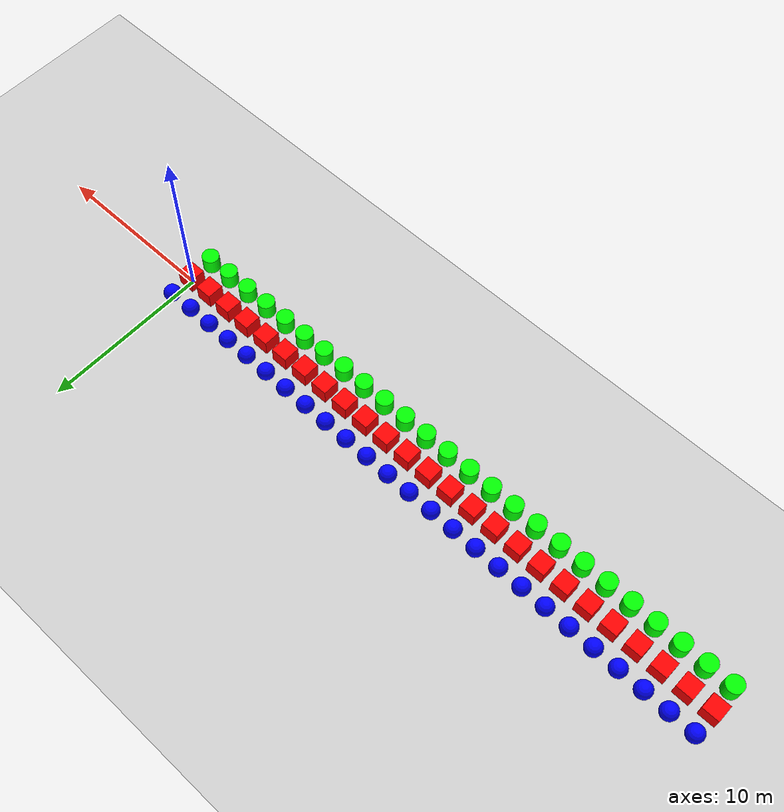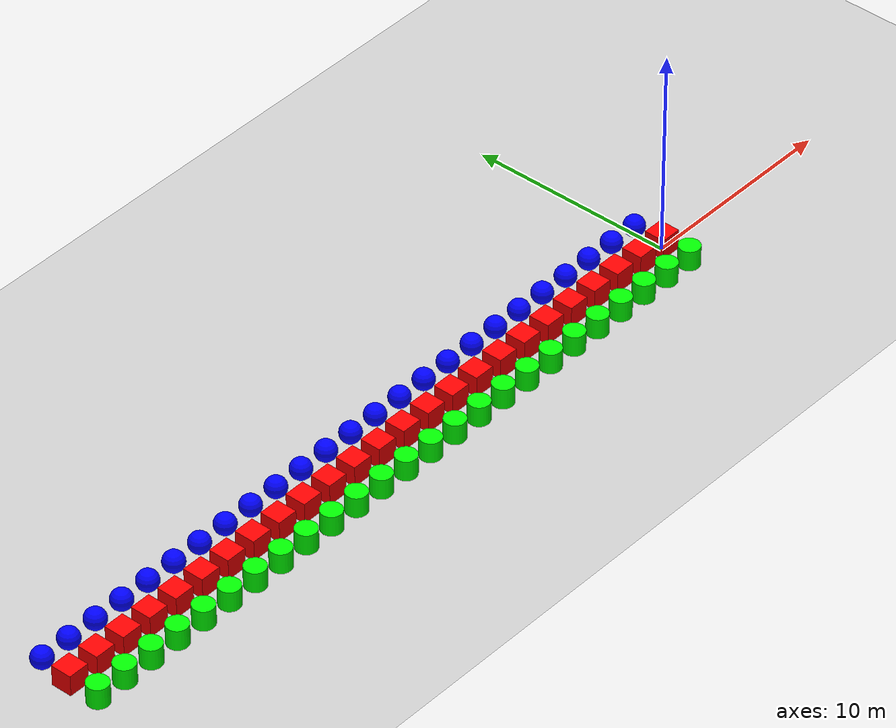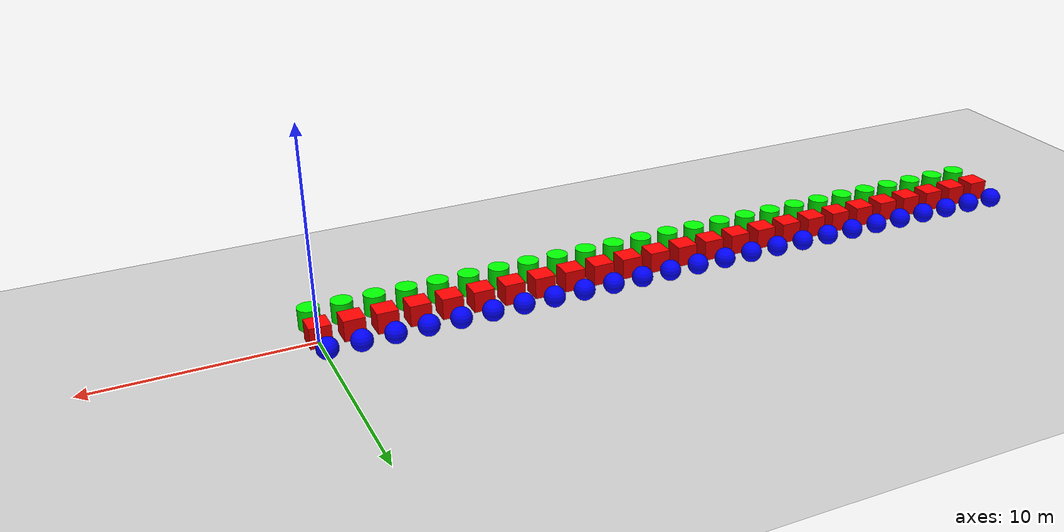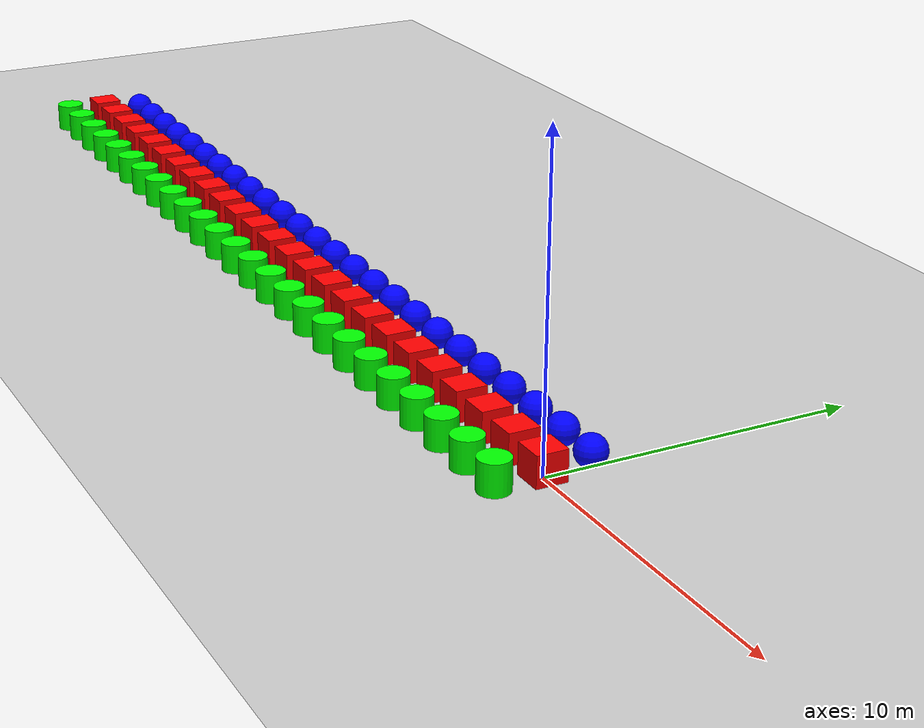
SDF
<sdf version="1.6">
 <world name="shapes">
  <model name="ground_plane">
   <static>true</static>
   <link name="link">
    <collision name="collision">
     <geometry><plane><normal>0 0 1</normal><size>100 100</size></plane></geometry>
    </collision>
    <visual name="visual">
     <geometry><plane><normal>0 0 1</normal><size>100 100</size></plane></geometry>
     <material>
      <ambient>0.8 0.8 0.8 1</ambient>
      <diffuse>0.8 0.8 0.8 1</diffuse>
      <specular>0.8 0.8 0.8 1</specular>
     </material>
    </visual>
   </link>
  </model>
  <model name="box_476">
   <static>false</static>
   <pose>-36.0 0 0.5 0 0 0</pose>
   <link name="box_link">
    <inertial>
     <inertia><ixx>1</ixx><ixy>0</ixy><ixz>0</ixz><iyy>1</iyy><iyz>0</iyz><izz>1</izz></inertia>
     <mass>1.0</mass>
    </inertial>
    <collision name="box_collision"><geometry><box><size>1 1 1</size></box></geometry></collision>
    <visual name="box_visual">
     <geometry><box><size>1 1 1</size></box></geometry>
     <material><ambient>1 0 0 1</ambient><diffuse>1 0 0 1</diffuse><specular>1 0 0 1</specular></material>
    </visual>
   </link>
  </model>
  <model name="cylinder_476">
   <static>false</static>
   <pose>-36.0 -1.5 0.5 0 0 0</pose>
   <link name="cylinder_link">
    <inertial>
     <inertia><ixx>2</ixx><ixy>0</ixy><ixz>0</ixz><iyy>2</iyy><iyz>0</iyz><izz>2</izz></inertia>
     <mass>2.0</mass>
    </inertial>
    <collision name="cylinder_collision">
     <geometry><cylinder><radius>0.5</radius><length>1.0</length></cylinder></geometry>
    </collision>
    <visual name="cylinder_visual">
     <geometry><cylinder><radius>0.5</radius><length>1.0</length></cylinder></geometry>
     <material><ambient>0 1 0 1</ambient><diffuse>0 1 0 1</diffuse><specular>0 1 0 1</specular></material>
    </visual>
   </link>
  </model>
  <model name="sphere_476">
   <static>false</static>
   <pose>-36.0 1.5 0.5 0 0 0</pose>
   <link name="sphere_link">
    <inertial>
     <inertia><ixx>3</ixx><ixy>0</ixy><ixz>0</ixz><iyy>3</iyy><iyz>0</iyz><izz>3</izz></inertia>
     <mass>3.0</mass>
    </inertial>
    <collision name="sphere_collision"><geometry><sphere><radius>0.5</radius></sphere></geometry></collision>
    <visual name="sphere_visual">
     <geometry><sphere><radius>0.5</radius></sphere></geometry>
     <material><ambient>0 0 1 1</ambient><diffuse>0 0 1 1</diffuse><specular>0 0 1 1</specular></material>
    </visual>
   </link>
  </model>
  <model name="box_477">
   <static>false</static>
   <pose>-34.5 0 0.5 0 0 0</pose>
   <link name="box_link">
    <inertial>
     <inertia><ixx>1</ixx><ixy>0</ixy><ixz>0</ixz><iyy>1</iyy><iyz>0</iyz><izz>1</izz></inertia>
     <mass>1.0</mass>
    </inertial>
    <collision name="box_collision"><geometry><box><size>1 1 1</size></box></geometry></collision>
    <visual name="box_visual">
     <geometry><box><size>1 1 1</size></box></geometry>
     <material><ambient>1 0 0 1</ambient><diffuse>1 0 0 1</diffuse><specular>1 0 0 1</specular></material>
    </visual>
   </link>
  </model>
  <model name="cylinder_477">
   <static>false</static>
   <pose>-34.5 -1.5 0.5 0 0 0</pose>
   <link name="cylinder_link">
    <inertial>
     <inertia><ixx>2</ixx><ixy>0</ixy><ixz>0</ixz><iyy>2</iyy><iyz>0</iyz><izz>2</izz></inertia>
     <mass>2.0</mass>
    </inertial>
    <collision name="cylinder_collision">
     <geometry><cylinder><radius>0.5</radius><length>1.0</length></cylinder></geometry>
    </collision>
    <visual name="cylinder_visual">
     <geometry><cylinder><radius>0.5</radius><length>1.0</length></cylinder></geometry>
     <material><ambient>0 1 0 1</ambient><diffuse>0 1 0 1</diffuse><specular>0 1 0 1</specular></material>
    </visual>
   </link>
  </model>
  <model name="sphere_477">
   <static>false</static>
   <pose>-34.5 1.5 0.5 0 0 0</pose>
   <link name="sphere_link">
    <inertial>
     <inertia><ixx>3</ixx><ixy>0</ixy><ixz>0</ixz><iyy>3</iyy><iyz>0</iyz><izz>3</izz></inertia>
     <mass>3.0</mass>
    </inertial>
    <collision name="sphere_collision"><geometry><sphere><radius>0.5</radius></sphere></geometry></collision>
    <visual name="sphere_visual">
     <geometry><sphere><radius>0.5</radius></sphere></geometry>
     <material><ambient>0 0 1 1</ambient><diffuse>0 0 1 1</diffuse><specular>0 0 1 1</specular></material>
    </visual>
   </link>
  </model>
  <model name="box_478">
   <static>false</static>
   <pose>-33.0 0 0.5 0 0 0</pose>
   <link name="box_link">
    <inertial>
     <inertia><ixx>1</ixx><ixy>0</ixy><ixz>0</ixz><iyy>1</iyy><iyz>0</iyz><izz>1</izz></inertia>
     <mass>1.0</mass>
    </inertial>
    <collision name="box_collision"><geometry><box><size>1 1 1</size></box></geometry></collision>
    <visual name="box_visual">
     <geometry><box><size>1 1 1</size></box></geometry>
     <material><ambient>1 0 0 1</ambient><diffuse>1 0 0 1</diffuse><specular>1 0 0 1</specular></material>
    </visual>
   </link>
  </model>
  <model name="cylinder_478">
   <static>false</static>
   <pose>-33.0 -1.5 0.5 0 0 0</pose>
   <link name="cylinder_link">
    <inertial>
     <inertia><ixx>2</ixx><ixy>0</ixy><ixz>0</ixz><iyy>2</iyy><iyz>0</iyz><izz>2</izz></inertia>
     <mass>2.0</mass>
    </inertial>
    <collision name="cylinder_collision">
     <geometry><cylinder><radius>0.5</radius><length>1.0</length></cylinder></geometry>
    </collision>
    <visual name="cylinder_visual">
     <geometry><cylinder><radius>0.5</radius><length>1.0</length></cylinder></geometry>
     <material><ambient>0 1 0 1</ambient><diffuse>0 1 0 1</diffuse><specular>0 1 0 1</specular></material>
    </visual>
   </link>
  </model>
  <model name="sphere_478">
   <static>false</static>
   <pose>-33.0 1.5 0.5 0 0 0</pose>
   <link name="sphere_link">
    <inertial>
     <inertia><ixx>3</ixx><ixy>0</ixy><ixz>0</ixz><iyy>3</iyy><iyz>0</iyz><izz>3</izz></inertia>
     <mass>3.0</mass>
    </inertial>
    <collision name="sphere_collision"><geometry><sphere><radius>0.5</radius></sphere></geometry></collision>
    <visual name="sphere_visual">
     <geometry><sphere><radius>0.5</radius></sphere></geometry>
     <material><ambient>0 0 1 1</ambient><diffuse>0 0 1 1</diffuse><specular>0 0 1 1</specular></material>
    </visual>
   </link>
  </model>
  <model name="box_479">
   <static>false</static>
   <pose>-31.5 0 0.5 0 0 0</pose>
   <link name="box_link">
    <inertial>
     <inertia><ixx>1</ixx><ixy>0</ixy><ixz>0</ixz><iyy>1</iyy><iyz>0</iyz><izz>1</izz></inertia>
     <mass>1.0</mass>
    </inertial>
    <collision name="box_collision"><geometry><box><size>1 1 1</size></box></geometry></collision>
    <visual name="box_visual">
     <geometry><box><size>1 1 1</size></box></geometry>
     <material><ambient>1 0 0 1</ambient><diffuse>1 0 0 1</diffuse><specular>1 0 0 1</specular></material>
    </visual>
   </link>
  </model>
  <model name="cylinder_479">
   <static>false</static>
   <pose>-31.5 -1.5 0.5 0 0 0</pose>
   <link name="cylinder_link">
    <inertial>
     <inertia><ixx>2</ixx><ixy>0</ixy><ixz>0</ixz><iyy>2</iyy><iyz>0</iyz><izz>2</izz></inertia>
     <mass>2.0</mass>
    </inertial>
    <collision name="cylinder_collision">
     <geometry><cylinder><radius>0.5</radius><length>1.0</length></cylinder></geometry>
    </collision>
    <visual name="cylinder_visual">
     <geometry><cylinder><radius>0.5</radius><length>1.0</length></cylinder></geometry>
     <material><ambient>0 1 0 1</ambient><diffuse>0 1 0 1</diffuse><specular>0 1 0 1</specular></material>
    </visual>
   </link>
  </model>
  <model name="sphere_479">
   <static>false</static>
   <pose>-31.5 1.5 0.5 0 0 0</pose>
   <link name="sphere_link">
    <inertial>
     <inertia><ixx>3</ixx><ixy>0</ixy><ixz>0</ixz><iyy>3</iyy><iyz>0</iyz><izz>3</izz></inertia>
     <mass>3.0</mass>
    </inertial>
    <collision name="sphere_collision"><geometry><sphere><radius>0.5</radius></sphere></geometry></collision>
    <visual name="sphere_visual">
     <geometry><sphere><radius>0.5</radius></sphere></geometry>
     <material><ambient>0 0 1 1</ambient><diffuse>0 0 1 1</diffuse><specular>0 0 1 1</specular></material>
    </visual>
   </link>
  </model>
  <model name="box_480">
   <static>false</static>
   <pose>-30.0 0 0.5 0 0 0</pose>
   <link name="box_link">
    <inertial>
     <inertia><ixx>1</ixx><ixy>0</ixy><ixz>0</ixz><iyy>1</iyy><iyz>0</iyz><izz>1</izz></inertia>
     <mass>1.0</mass>
    </inertial>
    <collision name="box_collision"><geometry><box><size>1 1 1</size></box></geometry></collision>
    <visual name="box_visual">
     <geometry><box><size>1 1 1</size></box></geometry>
     <material><ambient>1 0 0 1</ambient><diffuse>1 0 0 1</diffuse><specular>1 0 0 1</specular></material>
    </visual>
   </link>
  </model>
  <model name="cylinder_480">
   <static>false</static>
   <pose>-30.0 -1.5 0.5 0 0 0</pose>
   <link name="cylinder_link">
    <inertial>
     <inertia><ixx>2</ixx><ixy>0</ixy><ixz>0</ixz><iyy>2</iyy><iyz>0</iyz><izz>2</izz></inertia>
     <mass>2.0</mass>
    </inertial>
    <collision name="cylinder_collision">
     <geometry><cylinder><radius>0.5</radius><length>1.0</length></cylinder></geometry>
    </collision>
    <visual name="cylinder_visual">
     <geometry><cylinder><radius>0.5</radius><length>1.0</length></cylinder></geometry>
     <material><ambient>0 1 0 1</ambient><diffuse>0 1 0 1</diffuse><specular>0 1 0 1</specular></material>
    </visual>
   </link>
  </model>
  <model name="sphere_480">
   <static>false</static>
   <pose>-30.0 1.5 0.5 0 0 0</pose>
   <link name="sphere_link">
    <inertial>
     <inertia><ixx>3</ixx><ixy>0</ixy><ixz>0</ixz><iyy>3</iyy><iyz>0</iyz><izz>3</izz></inertia>
     <mass>3.0</mass>
    </inertial>
    <collision name="sphere_collision"><geometry><sphere><radius>0.5</radius></sphere></geometry></collision>
    <visual name="sphere_visual">
     <geometry><sphere><radius>0.5</radius></sphere></geometry>
     <material><ambient>0 0 1 1</ambient><diffuse>0 0 1 1</diffuse><specular>0 0 1 1</specular></material>
    </visual>
   </link>
  </model>
  <model name="box_481">
   <static>false</static>
   <pose>-28.5 0 0.5 0 0 0</pose>
   <link name="box_link">
    <inertial>
     <inertia><ixx>1</ixx><ixy>0</ixy><ixz>0</ixz><iyy>1</iyy><iyz>0</iyz><izz>1</izz></inertia>
     <mass>1.0</mass>
    </inertial>
    <collision name="box_collision"><geometry><box><size>1 1 1</size></box></geometry></collision>
    <visual name="box_visual">
     <geometry><box><size>1 1 1</size></box></geometry>
     <material><ambient>1 0 0 1</ambient><diffuse>1 0 0 1</diffuse><specular>1 0 0 1</specular></material>
    </visual>
   </link>
  </model>
  <model name="cylinder_481">
   <static>false</static>
   <pose>-28.5 -1.5 0.5 0 0 0</pose>
   <link name="cylinder_link">
    <inertial>
     <inertia><ixx>2</ixx><ixy>0</ixy><ixz>0</ixz><iyy>2</iyy><iyz>0</iyz><izz>2</izz></inertia>
     <mass>2.0</mass>
    </inertial>
    <collision name="cylinder_collision">
     <geometry><cylinder><radius>0.5</radius><length>1.0</length></cylinder></geometry>
    </collision>
    <visual name="cylinder_visual">
     <geometry><cylinder><radius>0.5</radius><length>1.0</length></cylinder></geometry>
     <material><ambient>0 1 0 1</ambient><diffuse>0 1 0 1</diffuse><specular>0 1 0 1</specular></material>
    </visual>
   </link>
  </model>
  <model name="sphere_481">
   <static>false</static>
   <pose>-28.5 1.5 0.5 0 0 0</pose>
   <link name="sphere_link">
    <inertial>
     <inertia><ixx>3</ixx><ixy>0</ixy><ixz>0</ixz><iyy>3</iyy><iyz>0</iyz><izz>3</izz></inertia>
     <mass>3.0</mass>
    </inertial>
    <collision name="sphere_collision"><geometry><sphere><radius>0.5</radius></sphere></geometry></collision>
    <visual name="sphere_visual">
     <geometry><sphere><radius>0.5</radius></sphere></geometry>
     <material><ambient>0 0 1 1</ambient><diffuse>0 0 1 1</diffuse><specular>0 0 1 1</specular></material>
    </visual>
   </link>
  </model>
  <model name="box_482">
   <static>false</static>
   <pose>-27.0 0 0.5 0 0 0</pose>
   <link name="box_link">
    <inertial>
     <inertia><ixx>1</ixx><ixy>0</ixy><ixz>0</ixz><iyy>1</iyy><iyz>0</iyz><izz>1</izz></inertia>
     <mass>1.0</mass>
    </inertial>
    <collision name="box_collision"><geometry><box><size>1 1 1</size></box></geometry></collision>
    <visual name="box_visual">
     <geometry><box><size>1 1 1</size></box></geometry>
     <material><ambient>1 0 0 1</ambient><diffuse>1 0 0 1</diffuse><specular>1 0 0 1</specular></material>
    </visual>
   </link>
  </model>
  <model name="cylinder_482">
   <static>false</static>
   <pose>-27.0 -1.5 0.5 0 0 0</pose>
   <link name="cylinder_link">
    <inertial>
     <inertia><ixx>2</ixx><ixy>0</ixy><ixz>0</ixz><iyy>2</iyy><iyz>0</iyz><izz>2</izz></inertia>
     <mass>2.0</mass>
    </inertial>
    <collision name="cylinder_collision">
     <geometry><cylinder><radius>0.5</radius><length>1.0</length></cylinder></geometry>
    </collision>
    <visual name="cylinder_visual">
     <geometry><cylinder><radius>0.5</radius><length>1.0</length></cylinder></geometry>
     <material><ambient>0 1 0 1</ambient><diffuse>0 1 0 1</diffuse><specular>0 1 0 1</specular></material>
    </visual>
   </link>
  </model>
  <model name="sphere_482">
   <static>false</static>
   <pose>-27.0 1.5 0.5 0 0 0</pose>
   <link name="sphere_link">
    <inertial>
     <inertia><ixx>3</ixx><ixy>0</ixy><ixz>0</ixz><iyy>3</iyy><iyz>0</iyz><izz>3</izz></inertia>
     <mass>3.0</mass>
    </inertial>
    <collision name="sphere_collision"><geometry><sphere><radius>0.5</radius></sphere></geometry></collision>
    <visual name="sphere_visual">
     <geometry><sphere><radius>0.5</radius></sphere></geometry>
     <material><ambient>0 0 1 1</ambient><diffuse>0 0 1 1</diffuse><specular>0 0 1 1</specular></material>
    </visual>
   </link>
  </model>
  <model name="box_483">
   <static>false</static>
   <pose>-25.5 0 0.5 0 0 0</pose>
   <link name="box_link">
    <inertial>
     <inertia><ixx>1</ixx><ixy>0</ixy><ixz>0</ixz><iyy>1</iyy><iyz>0</iyz><izz>1</izz></inertia>
     <mass>1.0</mass>
    </inertial>
    <collision name="box_collision"><geometry><box><size>1 1 1</size></box></geometry></collision>
    <visual name="box_visual">
     <geometry><box><size>1 1 1</size></box></geometry>
     <material><ambient>1 0 0 1</ambient><diffuse>1 0 0 1</diffuse><specular>1 0 0 1</specular></material>
    </visual>
   </link>
  </model>
  <model name="cylinder_483">
   <static>false</static>
   <pose>-25.5 -1.5 0.5 0 0 0</pose>
   <link name="cylinder_link">
    <inertial>
     <inertia><ixx>2</ixx><ixy>0</ixy><ixz>0</ixz><iyy>2</iyy><iyz>0</iyz><izz>2</izz></inertia>
     <mass>2.0</mass>
    </inertial>
    <collision name="cylinder_collision">
     <geometry><cylinder><radius>0.5</radius><length>1.0</length></cylinder></geometry>
    </collision>
    <visual name="cylinder_visual">
     <geometry><cylinder><radius>0.5</radius><length>1.0</length></cylinder></geometry>
     <material><ambient>0 1 0 1</ambient><diffuse>0 1 0 1</diffuse><specular>0 1 0 1</specular></material>
    </visual>
   </link>
  </model>
  <model name="sphere_483">
   <static>false</static>
   <pose>-25.5 1.5 0.5 0 0 0</pose>
   <link name="sphere_link">
    <inertial>
     <inertia><ixx>3</ixx><ixy>0</ixy><ixz>0</ixz><iyy>3</iyy><iyz>0</iyz><izz>3</izz></inertia>
     <mass>3.0</mass>
    </inertial>
    <collision name="sphere_collision"><geometry><sphere><radius>0.5</radius></sphere></geometry></collision>
    <visual name="sphere_visual">
     <geometry><sphere><radius>0.5</radius></sphere></geometry>
     <material><ambient>0 0 1 1</ambient><diffuse>0 0 1 1</diffuse><specular>0 0 1 1</specular></material>
    </visual>
   </link>
  </model>
  <model name="box_484">
   <static>false</static>
   <pose>-24.0 0 0.5 0 0 0</pose>
   <link name="box_link">
    <inertial>
     <inertia><ixx>1</ixx><ixy>0</ixy><ixz>0</ixz><iyy>1</iyy><iyz>0</iyz><izz>1</izz></inertia>
     <mass>1.0</mass>
    </inertial>
    <collision name="box_collision"><geometry><box><size>1 1 1</size></box></geometry></collision>
    <visual name="box_visual">
     <geometry><box><size>1 1 1</size></box></geometry>
     <material><ambient>1 0 0 1</ambient><diffuse>1 0 0 1</diffuse><specular>1 0 0 1</specular></material>
    </visual>
   </link>
  </model>
  <model name="cylinder_484">
   <static>false</static>
   <pose>-24.0 -1.5 0.5 0 0 0</pose>
   <link name="cylinder_link">
    <inertial>
     <inertia><ixx>2</ixx><ixy>0</ixy><ixz>0</ixz><iyy>2</iyy><iyz>0</iyz><izz>2</izz></inertia>
     <mass>2.0</mass>
    </inertial>
    <collision name="cylinder_collision">
     <geometry><cylinder><radius>0.5</radius><length>1.0</length></cylinder></geometry>
    </collision>
    <visual name="cylinder_visual">
     <geometry><cylinder><radius>0.5</radius><length>1.0</length></cylinder></geometry>
     <material><ambient>0 1 0 1</ambient><diffuse>0 1 0 1</diffuse><specular>0 1 0 1</specular></material>
    </visual>
   </link>
  </model>
  <model name="sphere_484">
   <static>false</static>
   <pose>-24.0 1.5 0.5 0 0 0</pose>
   <link name="sphere_link">
    <inertial>
     <inertia><ixx>3</ixx><ixy>0</ixy><ixz>0</ixz><iyy>3</iyy><iyz>0</iyz><izz>3</izz></inertia>
     <mass>3.0</mass>
    </inertial>
    <collision name="sphere_collision"><geometry><sphere><radius>0.5</radius></sphere></geometry></collision>
    <visual name="sphere_visual">
     <geometry><sphere><radius>0.5</radius></sphere></geometry>
     <material><ambient>0 0 1 1</ambient><diffuse>0 0 1 1</diffuse><specular>0 0 1 1</specular></material>
    </visual>
   </link>
  </model>
  <model name="box_485">
   <static>false</static>
   <pose>-22.5 0 0.5 0 0 0</pose>
   <link name="box_link">
    <inertial>
     <inertia><ixx>1</ixx><ixy>0</ixy><ixz>0</ixz><iyy>1</iyy><iyz>0</iyz><izz>1</izz></inertia>
     <mass>1.0</mass>
    </inertial>
    <collision name="box_collision"><geometry><box><size>1 1 1</size></box></geometry></collision>
    <visual name="box_visual">
     <geometry><box><size>1 1 1</size></box></geometry>
     <material><ambient>1 0 0 1</ambient><diffuse>1 0 0 1</diffuse><specular>1 0 0 1</specular></material>
    </visual>
   </link>
  </model>
  <model name="cylinder_485">
   <static>false</static>
   <pose>-22.5 -1.5 0.5 0 0 0</pose>
   <link name="cylinder_link">
    <inertial>
     <inertia><ixx>2</ixx><ixy>0</ixy><ixz>0</ixz><iyy>2</iyy><iyz>0</iyz><izz>2</izz></inertia>
     <mass>2.0</mass>
    </inertial>
    <collision name="cylinder_collision">
     <geometry><cylinder><radius>0.5</radius><length>1.0</length></cylinder></geometry>
    </collision>
    <visual name="cylinder_visual">
     <geometry><cylinder><radius>0.5</radius><length>1.0</length></cylinder></geometry>
     <material><ambient>0 1 0 1</ambient><diffuse>0 1 0 1</diffuse><specular>0 1 0 1</specular></material>
    </visual>
   </link>
  </model>
  <model name="sphere_485">
   <static>false</static>
   <pose>-22.5 1.5 0.5 0 0 0</pose>
   <link name="sphere_link">
    <inertial>
     <inertia><ixx>3</ixx><ixy>0</ixy><ixz>0</ixz><iyy>3</iyy><iyz>0</iyz><izz>3</izz></inertia>
     <mass>3.0</mass>
    </inertial>
    <collision name="sphere_collision"><geometry><sphere><radius>0.5</radius></sphere></geometry></collision>
    <visual name="sphere_visual">
     <geometry><sphere><radius>0.5</radius></sphere></geometry>
     <material><ambient>0 0 1 1</ambient><diffuse>0 0 1 1</diffuse><specular>0 0 1 1</specular></material>
    </visual>
   </link>
  </model>
  <model name="box_486">
   <static>false</static>
   <pose>-21.0 0 0.5 0 0 0</pose>
   <link name="box_link">
    <inertial>
     <inertia><ixx>1</ixx><ixy>0</ixy><ixz>0</ixz><iyy>1</iyy><iyz>0</iyz><izz>1</izz></inertia>
     <mass>1.0</mass>
    </inertial>
    <collision name="box_collision"><geometry><box><size>1 1 1</size></box></geometry></collision>
    <visual name="box_visual">
     <geometry><box><size>1 1 1</size></box></geometry>
     <material><ambient>1 0 0 1</ambient><diffuse>1 0 0 1</diffuse><specular>1 0 0 1</specular></material>
    </visual>
   </link>
  </model>
  <model name="cylinder_486">
   <static>false</static>
   <pose>-21.0 -1.5 0.5 0 0 0</pose>
   <link name="cylinder_link">
    <inertial>
     <inertia><ixx>2</ixx><ixy>0</ixy><ixz>0</ixz><iyy>2</iyy><iyz>0</iyz><izz>2</izz></inertia>
     <mass>2.0</mass>
    </inertial>
    <collision name="cylinder_collision">
     <geometry><cylinder><radius>0.5</radius><length>1.0</length></cylinder></geometry>
    </collision>
    <visual name="cylinder_visual">
     <geometry><cylinder><radius>0.5</radius><length>1.0</length></cylinder></geometry>
     <material><ambient>0 1 0 1</ambient><diffuse>0 1 0 1</diffuse><specular>0 1 0 1</specular></material>
    </visual>
   </link>
  </model>
  <model name="sphere_486">
   <static>false</static>
   <pose>-21.0 1.5 0.5 0 0 0</pose>
   <link name="sphere_link">
    <inertial>
     <inertia><ixx>3</ixx><ixy>0</ixy><ixz>0</ixz><iyy>3</iyy><iyz>0</iyz><izz>3</izz></inertia>
     <mass>3.0</mass>
    </inertial>
    <collision name="sphere_collision"><geometry><sphere><radius>0.5</radius></sphere></geometry></collision>
    <visual name="sphere_visual">
     <geometry><sphere><radius>0.5</radius></sphere></geometry>
     <material><ambient>0 0 1 1</ambient><diffuse>0 0 1 1</diffuse><specular>0 0 1 1</specular></material>
    </visual>
   </link>
  </model>
  <model name="box_487">
   <static>false</static>
   <pose>-19.5 0 0.5 0 0 0</pose>
   <link name="box_link">
    <inertial>
     <inertia><ixx>1</ixx><ixy>0</ixy><ixz>0</ixz><iyy>1</iyy><iyz>0</iyz><izz>1</izz></inertia>
     <mass>1.0</mass>
    </inertial>
    <collision name="box_collision"><geometry><box><size>1 1 1</size></box></geometry></collision>
    <visual name="box_visual">
     <geometry><box><size>1 1 1</size></box></geometry>
     <material><ambient>1 0 0 1</ambient><diffuse>1 0 0 1</diffuse><specular>1 0 0 1</specular></material>
    </visual>
   </link>
  </model>
  <model name="cylinder_487">
   <static>false</static>
   <pose>-19.5 -1.5 0.5 0 0 0</pose>
   <link name="cylinder_link">
    <inertial>
     <inertia><ixx>2</ixx><ixy>0</ixy><ixz>0</ixz><iyy>2</iyy><iyz>0</iyz><izz>2</izz></inertia>
     <mass>2.0</mass>
    </inertial>
    <collision name="cylinder_collision">
     <geometry><cylinder><radius>0.5</radius><length>1.0</length></cylinder></geometry>
    </collision>
    <visual name="cylinder_visual">
     <geometry><cylinder><radius>0.5</radius><length>1.0</length></cylinder></geometry>
     <material><ambient>0 1 0 1</ambient><diffuse>0 1 0 1</diffuse><specular>0 1 0 1</specular></material>
    </visual>
   </link>
  </model>
  <model name="sphere_487">
   <static>false</static>
   <pose>-19.5 1.5 0.5 0 0 0</pose>
   <link name="sphere_link">
    <inertial>
     <inertia><ixx>3</ixx><ixy>0</ixy><ixz>0</ixz><iyy>3</iyy><iyz>0</iyz><izz>3</izz></inertia>
     <mass>3.0</mass>
    </inertial>
    <collision name="sphere_collision"><geometry><sphere><radius>0.5</radius></sphere></geometry></collision>
    <visual name="sphere_visual">
     <geometry><sphere><radius>0.5</radius></sphere></geometry>
     <material><ambient>0 0 1 1</ambient><diffuse>0 0 1 1</diffuse><specular>0 0 1 1</specular></material>
    </visual>
   </link>
  </model>
  <model name="box_488">
   <static>false</static>
   <pose>-18.0 0 0.5 0 0 0</pose>
   <link name="box_link">
    <inertial>
     <inertia><ixx>1</ixx><ixy>0</ixy><ixz>0</ixz><iyy>1</iyy><iyz>0</iyz><izz>1</izz></inertia>
     <mass>1.0</mass>
    </inertial>
    <collision name="box_collision"><geometry><box><size>1 1 1</size></box></geometry></collision>
    <visual name="box_visual">
     <geometry><box><size>1 1 1</size></box></geometry>
     <material><ambient>1 0 0 1</ambient><diffuse>1 0 0 1</diffuse><specular>1 0 0 1</specular></material>
    </visual>
   </link>
  </model>
  <model name="cylinder_488">
   <static>false</static>
   <pose>-18.0 -1.5 0.5 0 0 0</pose>
   <link name="cylinder_link">
    <inertial>
     <inertia><ixx>2</ixx><ixy>0</ixy><ixz>0</ixz><iyy>2</iyy><iyz>0</iyz><izz>2</izz></inertia>
     <mass>2.0</mass>
    </inertial>
    <collision name="cylinder_collision">
     <geometry><cylinder><radius>0.5</radius><length>1.0</length></cylinder></geometry>
    </collision>
    <visual name="cylinder_visual">
     <geometry><cylinder><radius>0.5</radius><length>1.0</length></cylinder></geometry>
     <material><ambient>0 1 0 1</ambient><diffuse>0 1 0 1</diffuse><specular>0 1 0 1</specular></material>
    </visual>
   </link>
  </model>
  <model name="sphere_488">
   <static>false</static>
   <pose>-18.0 1.5 0.5 0 0 0</pose>
   <link name="sphere_link">
    <inertial>
     <inertia><ixx>3</ixx><ixy>0</ixy><ixz>0</ixz><iyy>3</iyy><iyz>0</iyz><izz>3</izz></inertia>
     <mass>3.0</mass>
    </inertial>
    <collision name="sphere_collision"><geometry><sphere><radius>0.5</radius></sphere></geometry></collision>
    <visual name="sphere_visual">
     <geometry><sphere><radius>0.5</radius></sphere></geometry>
     <material><ambient>0 0 1 1</ambient><diffuse>0 0 1 1</diffuse><specular>0 0 1 1</specular></material>
    </visual>
   </link>
  </model>
  <model name="box_489">
   <static>false</static>
   <pose>-16.5 0 0.5 0 0 0</pose>
   <link name="box_link">
    <inertial>
     <inertia><ixx>1</ixx><ixy>0</ixy><ixz>0</ixz><iyy>1</iyy><iyz>0</iyz><izz>1</izz></inertia>
     <mass>1.0</mass>
    </inertial>
    <collision name="box_collision"><geometry><box><size>1 1 1</size></box></geometry></collision>
    <visual name="box_visual">
     <geometry><box><size>1 1 1</size></box></geometry>
     <material><ambient>1 0 0 1</ambient><diffuse>1 0 0 1</diffuse><specular>1 0 0 1</specular></material>
    </visual>
   </link>
  </model>
  <model name="cylinder_489">
   <static>false</static>
   <pose>-16.5 -1.5 0.5 0 0 0</pose>
   <link name="cylinder_link">
    <inertial>
     <inertia><ixx>2</ixx><ixy>0</ixy><ixz>0</ixz><iyy>2</iyy><iyz>0</iyz><izz>2</izz></inertia>
     <mass>2.0</mass>
    </inertial>
    <collision name="cylinder_collision">
     <geometry><cylinder><radius>0.5</radius><length>1.0</length></cylinder></geometry>
    </collision>
    <visual name="cylinder_visual">
     <geometry><cylinder><radius>0.5</radius><length>1.0</length></cylinder></geometry>
     <material><ambient>0 1 0 1</ambient><diffuse>0 1 0 1</diffuse><specular>0 1 0 1</specular></material>
    </visual>
   </link>
  </model>
  <model name="sphere_489">
   <static>false</static>
   <pose>-16.5 1.5 0.5 0 0 0</pose>
   <link name="sphere_link">
    <inertial>
     <inertia><ixx>3</ixx><ixy>0</ixy><ixz>0</ixz><iyy>3</iyy><iyz>0</iyz><izz>3</izz></inertia>
     <mass>3.0</mass>
    </inertial>
    <collision name="sphere_collision"><geometry><sphere><radius>0.5</radius></sphere></geometry></collision>
    <visual name="sphere_visual">
     <geometry><sphere><radius>0.5</radius></sphere></geometry>
     <material><ambient>0 0 1 1</ambient><diffuse>0 0 1 1</diffuse><specular>0 0 1 1</specular></material>
    </visual>
   </link>
  </model>
  <model name="box_490">
   <static>false</static>
   <pose>-15.0 0 0.5 0 0 0</pose>
   <link name="box_link">
    <inertial>
     <inertia><ixx>1</ixx><ixy>0</ixy><ixz>0</ixz><iyy>1</iyy><iyz>0</iyz><izz>1</izz></inertia>
     <mass>1.0</mass>
    </inertial>
    <collision name="box_collision"><geometry><box><size>1 1 1</size></box></geometry></collision>
    <visual name="box_visual">
     <geometry><box><size>1 1 1</size></box></geometry>
     <material><ambient>1 0 0 1</ambient><diffuse>1 0 0 1</diffuse><specular>1 0 0 1</specular></material>
    </visual>
   </link>
  </model>
  <model name="cylinder_490">
   <static>false</static>
   <pose>-15.0 -1.5 0.5 0 0 0</pose>
   <link name="cylinder_link">
    <inertial>
     <inertia><ixx>2</ixx><ixy>0</ixy><ixz>0</ixz><iyy>2</iyy><iyz>0</iyz><izz>2</izz></inertia>
     <mass>2.0</mass>
    </inertial>
    <collision name="cylinder_collision">
     <geometry><cylinder><radius>0.5</radius><length>1.0</length></cylinder></geometry>
    </collision>
    <visual name="cylinder_visual">
     <geometry><cylinder><radius>0.5</radius><length>1.0</length></cylinder></geometry>
     <material><ambient>0 1 0 1</ambient><diffuse>0 1 0 1</diffuse><specular>0 1 0 1</specular></material>
    </visual>
   </link>
  </model>
  <model name="sphere_490">
   <static>false</static>
   <pose>-15.0 1.5 0.5 0 0 0</pose>
   <link name="sphere_link">
    <inertial>
     <inertia><ixx>3</ixx><ixy>0</ixy><ixz>0</ixz><iyy>3</iyy><iyz>0</iyz><izz>3</izz></inertia>
     <mass>3.0</mass>
    </inertial>
    <collision name="sphere_collision"><geometry><sphere><radius>0.5</radius></sphere></geometry></collision>
    <visual name="sphere_visual">
     <geometry><sphere><radius>0.5</radius></sphere></geometry>
     <material><ambient>0 0 1 1</ambient><diffuse>0 0 1 1</diffuse><specular>0 0 1 1</specular></material>
    </visual>
   </link>
  </model>
  <model name="box_491">
   <static>false</static>
   <pose>-13.5 0 0.5 0 0 0</pose>
   <link name="box_link">
    <inertial>
     <inertia><ixx>1</ixx><ixy>0</ixy><ixz>0</ixz><iyy>1</iyy><iyz>0</iyz><izz>1</izz></inertia>
     <mass>1.0</mass>
    </inertial>
    <collision name="box_collision"><geometry><box><size>1 1 1</size></box></geometry></collision>
    <visual name="box_visual">
     <geometry><box><size>1 1 1</size></box></geometry>
     <material><ambient>1 0 0 1</ambient><diffuse>1 0 0 1</diffuse><specular>1 0 0 1</specular></material>
    </visual>
   </link>
  </model>
  <model name="cylinder_491">
   <static>false</static>
   <pose>-13.5 -1.5 0.5 0 0 0</pose>
   <link name="cylinder_link">
    <inertial>
     <inertia><ixx>2</ixx><ixy>0</ixy><ixz>0</ixz><iyy>2</iyy><iyz>0</iyz><izz>2</izz></inertia>
     <mass>2.0</mass>
    </inertial>
    <collision name="cylinder_collision">
     <geometry><cylinder><radius>0.5</radius><length>1.0</length></cylinder></geometry>
    </collision>
    <visual name="cylinder_visual">
     <geometry><cylinder><radius>0.5</radius><length>1.0</length></cylinder></geometry>
     <material><ambient>0 1 0 1</ambient><diffuse>0 1 0 1</diffuse><specular>0 1 0 1</specular></material>
    </visual>
   </link>
  </model>
  <model name="sphere_491">
   <static>false</static>
   <pose>-13.5 1.5 0.5 0 0 0</pose>
   <link name="sphere_link">
    <inertial>
     <inertia><ixx>3</ixx><ixy>0</ixy><ixz>0</ixz><iyy>3</iyy><iyz>0</iyz><izz>3</izz></inertia>
     <mass>3.0</mass>
    </inertial>
    <collision name="sphere_collision"><geometry><sphere><radius>0.5</radius></sphere></geometry></collision>
    <visual name="sphere_visual">
     <geometry><sphere><radius>0.5</radius></sphere></geometry>
     <material><ambient>0 0 1 1</ambient><diffuse>0 0 1 1</diffuse><specular>0 0 1 1</specular></material>
    </visual>
   </link>
  </model>
  <model name="box_492">
   <static>false</static>
   <pose>-12.0 0 0.5 0 0 0</pose>
   <link name="box_link">
    <inertial>
     <inertia><ixx>1</ixx><ixy>0</ixy><ixz>0</ixz><iyy>1</iyy><iyz>0</iyz><izz>1</izz></inertia>
     <mass>1.0</mass>
    </inertial>
    <collision name="box_collision"><geometry><box><size>1 1 1</size></box></geometry></collision>
    <visual name="box_visual">
     <geometry><box><size>1 1 1</size></box></geometry>
     <material><ambient>1 0 0 1</ambient><diffuse>1 0 0 1</diffuse><specular>1 0 0 1</specular></material>
    </visual>
   </link>
  </model>
  <model name="cylinder_492">
   <static>false</static>
   <pose>-12.0 -1.5 0.5 0 0 0</pose>
   <link name="cylinder_link">
    <inertial>
     <inertia><ixx>2</ixx><ixy>0</ixy><ixz>0</ixz><iyy>2</iyy><iyz>0</iyz><izz>2</izz></inertia>
     <mass>2.0</mass>
    </inertial>
    <collision name="cylinder_collision">
     <geometry><cylinder><radius>0.5</radius><length>1.0</length></cylinder></geometry>
    </collision>
    <visual name="cylinder_visual">
     <geometry><cylinder><radius>0.5</radius><length>1.0</length></cylinder></geometry>
     <material><ambient>0 1 0 1</ambient><diffuse>0 1 0 1</diffuse><specular>0 1 0 1</specular></material>
    </visual>
   </link>
  </model>
  <model name="sphere_492">
   <static>false</static>
   <pose>-12.0 1.5 0.5 0 0 0</pose>
   <link name="sphere_link">
    <inertial>
     <inertia><ixx>3</ixx><ixy>0</ixy><ixz>0</ixz><iyy>3</iyy><iyz>0</iyz><izz>3</izz></inertia>
     <mass>3.0</mass>
    </inertial>
    <collision name="sphere_collision"><geometry><sphere><radius>0.5</radius></sphere></geometry></collision>
    <visual name="sphere_visual">
     <geometry><sphere><radius>0.5</radius></sphere></geometry>
     <material><ambient>0 0 1 1</ambient><diffuse>0 0 1 1</diffuse><specular>0 0 1 1</specular></material>
    </visual>
   </link>
  </model>
  <model name="box_493">
   <static>false</static>
   <pose>-10.5 0 0.5 0 0 0</pose>
   <link name="box_link">
    <inertial>
     <inertia><ixx>1</ixx><ixy>0</ixy><ixz>0</ixz><iyy>1</iyy><iyz>0</iyz><izz>1</izz></inertia>
     <mass>1.0</mass>
    </inertial>
    <collision name="box_collision"><geometry><box><size>1 1 1</size></box></geometry></collision>
    <visual name="box_visual">
     <geometry><box><size>1 1 1</size></box></geometry>
     <material><ambient>1 0 0 1</ambient><diffuse>1 0 0 1</diffuse><specular>1 0 0 1</specular></material>
    </visual>
   </link>
  </model>
  <model name="cylinder_493">
   <static>false</static>
   <pose>-10.5 -1.5 0.5 0 0 0</pose>
   <link name="cylinder_link">
    <inertial>
     <inertia><ixx>2</ixx><ixy>0</ixy><ixz>0</ixz><iyy>2</iyy><iyz>0</iyz><izz>2</izz></inertia>
     <mass>2.0</mass>
    </inertial>
    <collision name="cylinder_collision">
     <geometry><cylinder><radius>0.5</radius><length>1.0</length></cylinder></geometry>
    </collision>
    <visual name="cylinder_visual">
     <geometry><cylinder><radius>0.5</radius><length>1.0</length></cylinder></geometry>
     <material><ambient>0 1 0 1</ambient><diffuse>0 1 0 1</diffuse><specular>0 1 0 1</specular></material>
    </visual>
   </link>
  </model>
  <model name="sphere_493">
   <static>false</static>
   <pose>-10.5 1.5 0.5 0 0 0</pose>
   <link name="sphere_link">
    <inertial>
     <inertia><ixx>3</ixx><ixy>0</ixy><ixz>0</ixz><iyy>3</iyy><iyz>0</iyz><izz>3</izz></inertia>
     <mass>3.0</mass>
    </inertial>
    <collision name="sphere_collision"><geometry><sphere><radius>0.5</radius></sphere></geometry></collision>
    <visual name="sphere_visual">
     <geometry><sphere><radius>0.5</radius></sphere></geometry>
     <material><ambient>0 0 1 1</ambient><diffuse>0 0 1 1</diffuse><specular>0 0 1 1</specular></material>
    </visual>
   </link>
  </model>
  <model name="box_494">
   <static>false</static>
   <pose>-9.0 0 0.5 0 0 0</pose>
   <link name="box_link">
    <inertial>
     <inertia><ixx>1</ixx><ixy>0</ixy><ixz>0</ixz><iyy>1</iyy><iyz>0</iyz><izz>1</izz></inertia>
     <mass>1.0</mass>
    </inertial>
    <collision name="box_collision"><geometry><box><size>1 1 1</size></box></geometry></collision>
    <visual name="box_visual">
     <geometry><box><size>1 1 1</size></box></geometry>
     <material><ambient>1 0 0 1</ambient><diffuse>1 0 0 1</diffuse><specular>1 0 0 1</specular></material>
    </visual>
   </link>
  </model>
  <model name="cylinder_494">
   <static>false</static>
   <pose>-9.0 -1.5 0.5 0 0 0</pose>
   <link name="cylinder_link">
    <inertial>
     <inertia><ixx>2</ixx><ixy>0</ixy><ixz>0</ixz><iyy>2</iyy><iyz>0</iyz><izz>2</izz></inertia>
     <mass>2.0</mass>
    </inertial>
    <collision name="cylinder_collision">
     <geometry><cylinder><radius>0.5</radius><length>1.0</length></cylinder></geometry>
    </collision>
    <visual name="cylinder_visual">
     <geometry><cylinder><radius>0.5</radius><length>1.0</length></cylinder></geometry>
     <material><ambient>0 1 0 1</ambient><diffuse>0 1 0 1</diffuse><specular>0 1 0 1</specular></material>
    </visual>
   </link>
  </model>
  <model name="sphere_494">
   <static>false</static>
   <pose>-9.0 1.5 0.5 0 0 0</pose>
   <link name="sphere_link">
    <inertial>
     <inertia><ixx>3</ixx><ixy>0</ixy><ixz>0</ixz><iyy>3</iyy><iyz>0</iyz><izz>3</izz></inertia>
     <mass>3.0</mass>
    </inertial>
    <collision name="sphere_collision"><geometry><sphere><radius>0.5</radius></sphere></geometry></collision>
    <visual name="sphere_visual">
     <geometry><sphere><radius>0.5</radius></sphere></geometry>
     <material><ambient>0 0 1 1</ambient><diffuse>0 0 1 1</diffuse><specular>0 0 1 1</specular></material>
    </visual>
   </link>
  </model>
  <model name="box_495">
   <static>false</static>
   <pose>-7.5 0 0.5 0 0 0</pose>
   <link name="box_link">
    <inertial>
     <inertia><ixx>1</ixx><ixy>0</ixy><ixz>0</ixz><iyy>1</iyy><iyz>0</iyz><izz>1</izz></inertia>
     <mass>1.0</mass>
    </inertial>
    <collision name="box_collision"><geometry><box><size>1 1 1</size></box></geometry></collision>
    <visual name="box_visual">
     <geometry><box><size>1 1 1</size></box></geometry>
     <material><ambient>1 0 0 1</ambient><diffuse>1 0 0 1</diffuse><specular>1 0 0 1</specular></material>
    </visual>
   </link>
  </model>
  <model name="cylinder_495">
   <static>false</static>
   <pose>-7.5 -1.5 0.5 0 0 0</pose>
   <link name="cylinder_link">
    <inertial>
     <inertia><ixx>2</ixx><ixy>0</ixy><ixz>0</ixz><iyy>2</iyy><iyz>0</iyz><izz>2</izz></inertia>
     <mass>2.0</mass>
    </inertial>
    <collision name="cylinder_collision">
     <geometry><cylinder><radius>0.5</radius><length>1.0</length></cylinder></geometry>
    </collision>
    <visual name="cylinder_visual">
     <geometry><cylinder><radius>0.5</radius><length>1.0</length></cylinder></geometry>
     <material><ambient>0 1 0 1</ambient><diffuse>0 1 0 1</diffuse><specular>0 1 0 1</specular></material>
    </visual>
   </link>
  </model>
  <model name="sphere_495">
   <static>false</static>
   <pose>-7.5 1.5 0.5 0 0 0</pose>
   <link name="sphere_link">
    <inertial>
     <inertia><ixx>3</ixx><ixy>0</ixy><ixz>0</ixz><iyy>3</iyy><iyz>0</iyz><izz>3</izz></inertia>
     <mass>3.0</mass>
    </inertial>
    <collision name="sphere_collision"><geometry><sphere><radius>0.5</radius></sphere></geometry></collision>
    <visual name="sphere_visual">
     <geometry><sphere><radius>0.5</radius></sphere></geometry>
     <material><ambient>0 0 1 1</ambient><diffuse>0 0 1 1</diffuse><specular>0 0 1 1</specular></material>
    </visual>
   </link>
  </model>
  <model name="box_496">
   <static>false</static>
   <pose>-6.0 0 0.5 0 0 0</pose>
   <link name="box_link">
    <inertial>
     <inertia><ixx>1</ixx><ixy>0</ixy><ixz>0</ixz><iyy>1</iyy><iyz>0</iyz><izz>1</izz></inertia>
     <mass>1.0</mass>
    </inertial>
    <collision name="box_collision"><geometry><box><size>1 1 1</size></box></geometry></collision>
    <visual name="box_visual">
     <geometry><box><size>1 1 1</size></box></geometry>
     <material><ambient>1 0 0 1</ambient><diffuse>1 0 0 1</diffuse><specular>1 0 0 1</specular></material>
    </visual>
   </link>
  </model>
  <model name="cylinder_496">
   <static>false</static>
   <pose>-6.0 -1.5 0.5 0 0 0</pose>
   <link name="cylinder_link">
    <inertial>
     <inertia><ixx>2</ixx><ixy>0</ixy><ixz>0</ixz><iyy>2</iyy><iyz>0</iyz><izz>2</izz></inertia>
     <mass>2.0</mass>
    </inertial>
    <collision name="cylinder_collision">
     <geometry><cylinder><radius>0.5</radius><length>1.0</length></cylinder></geometry>
    </collision>
    <visual name="cylinder_visual">
     <geometry><cylinder><radius>0.5</radius><length>1.0</length></cylinder></geometry>
     <material><ambient>0 1 0 1</ambient><diffuse>0 1 0 1</diffuse><specular>0 1 0 1</specular></material>
    </visual>
   </link>
  </model>
  <model name="sphere_496">
   <static>false</static>
   <pose>-6.0 1.5 0.5 0 0 0</pose>
   <link name="sphere_link">
    <inertial>
     <inertia><ixx>3</ixx><ixy>0</ixy><ixz>0</ixz><iyy>3</iyy><iyz>0</iyz><izz>3</izz></inertia>
     <mass>3.0</mass>
    </inertial>
    <collision name="sphere_collision"><geometry><sphere><radius>0.5</radius></sphere></geometry></collision>
    <visual name="sphere_visual">
     <geometry><sphere><radius>0.5</radius></sphere></geometry>
     <material><ambient>0 0 1 1</ambient><diffuse>0 0 1 1</diffuse><specular>0 0 1 1</specular></material>
    </visual>
   </link>
  </model>
  <model name="box_497">
   <static>false</static>
   <pose>-4.5 0 0.5 0 0 0</pose>
   <link name="box_link">
    <inertial>
     <inertia><ixx>1</ixx><ixy>0</ixy><ixz>0</ixz><iyy>1</iyy><iyz>0</iyz><izz>1</izz></inertia>
     <mass>1.0</mass>
    </inertial>
    <collision name="box_collision"><geometry><box><size>1 1 1</size></box></geometry></collision>
    <visual name="box_visual">
     <geometry><box><size>1 1 1</size></box></geometry>
     <material><ambient>1 0 0 1</ambient><diffuse>1 0 0 1</diffuse><specular>1 0 0 1</specular></material>
    </visual>
   </link>
  </model>
  <model name="cylinder_497">
   <static>false</static>
   <pose>-4.5 -1.5 0.5 0 0 0</pose>
   <link name="cylinder_link">
    <inertial>
     <inertia><ixx>2</ixx><ixy>0</ixy><ixz>0</ixz><iyy>2</iyy><iyz>0</iyz><izz>2</izz></inertia>
     <mass>2.0</mass>
    </inertial>
    <collision name="cylinder_collision">
     <geometry><cylinder><radius>0.5</radius><length>1.0</length></cylinder></geometry>
    </collision>
    <visual name="cylinder_visual">
     <geometry><cylinder><radius>0.5</radius><length>1.0</length></cylinder></geometry>
     <material><ambient>0 1 0 1</ambient><diffuse>0 1 0 1</diffuse><specular>0 1 0 1</specular></material>
    </visual>
   </link>
  </model>
  <model name="sphere_497">
   <static>false</static>
   <pose>-4.5 1.5 0.5 0 0 0</pose>
   <link name="sphere_link">
    <inertial>
     <inertia><ixx>3</ixx><ixy>0</ixy><ixz>0</ixz><iyy>3</iyy><iyz>0</iyz><izz>3</izz></inertia>
     <mass>3.0</mass>
    </inertial>
    <collision name="sphere_collision"><geometry><sphere><radius>0.5</radius></sphere></geometry></collision>
    <visual name="sphere_visual">
     <geometry><sphere><radius>0.5</radius></sphere></geometry>
     <material><ambient>0 0 1 1</ambient><diffuse>0 0 1 1</diffuse><specular>0 0 1 1</specular></material>
    </visual>
   </link>
  </model>
  <model name="box_498">
   <static>false</static>
   <pose>-3.0 0 0.5 0 0 0</pose>
   <link name="box_link">
    <inertial>
     <inertia><ixx>1</ixx><ixy>0</ixy><ixz>0</ixz><iyy>1</iyy><iyz>0</iyz><izz>1</izz></inertia>
     <mass>1.0</mass>
    </inertial>
    <collision name="box_collision"><geometry><box><size>1 1 1</size></box></geometry></collision>
    <visual name="box_visual">
     <geometry><box><size>1 1 1</size></box></geometry>
     <material><ambient>1 0 0 1</ambient><diffuse>1 0 0 1</diffuse><specular>1 0 0 1</specular></material>
    </visual>
   </link>
  </model>
  <model name="cylinder_498">
   <static>false</static>
   <pose>-3.0 -1.5 0.5 0 0 0</pose>
   <link name="cylinder_link">
    <inertial>
     <inertia><ixx>2</ixx><ixy>0</ixy><ixz>0</ixz><iyy>2</iyy><iyz>0</iyz><izz>2</izz></inertia>
     <mass>2.0</mass>
    </inertial>
    <collision name="cylinder_collision">
     <geometry><cylinder><radius>0.5</radius><length>1.0</length></cylinder></geometry>
    </collision>
    <visual name="cylinder_visual">
     <geometry><cylinder><radius>0.5</radius><length>1.0</length></cylinder></geometry>
     <material><ambient>0 1 0 1</ambient><diffuse>0 1 0 1</diffuse><specular>0 1 0 1</specular></material>
    </visual>
   </link>
  </model>
  <model name="sphere_498">
   <static>false</static>
   <pose>-3.0 1.5 0.5 0 0 0</pose>
   <link name="sphere_link">
    <inertial>
     <inertia><ixx>3</ixx><ixy>0</ixy><ixz>0</ixz><iyy>3</iyy><iyz>0</iyz><izz>3</izz></inertia>
     <mass>3.0</mass>
    </inertial>
    <collision name="sphere_collision"><geometry><sphere><radius>0.5</radius></sphere></geometry></collision>
    <visual name="sphere_visual">
     <geometry><sphere><radius>0.5</radius></sphere></geometry>
     <material><ambient>0 0 1 1</ambient><diffuse>0 0 1 1</diffuse><specular>0 0 1 1</specular></material>
    </visual>
   </link>
  </model>
  <model name="box_499">
   <static>false</static>
   <pose>-1.5 0 0.5 0 0 0</pose>
   <link name="box_link">
    <inertial>
     <inertia><ixx>1</ixx><ixy>0</ixy><ixz>0</ixz><iyy>1</iyy><iyz>0</iyz><izz>1</izz></inertia>
     <mass>1.0</mass>
    </inertial>
    <collision name="box_collision"><geometry><box><size>1 1 1</size></box></geometry></collision>
    <visual name="box_visual">
     <geometry><box><size>1 1 1</size></box></geometry>
     <material><ambient>1 0 0 1</ambient><diffuse>1 0 0 1</diffuse><specular>1 0 0 1</specular></material>
    </visual>
   </link>
  </model>
  <model name="cylinder_499">
   <static>false</static>
   <pose>-1.5 -1.5 0.5 0 0 0</pose>
   <link name="cylinder_link">
    <inertial>
     <inertia><ixx>2</ixx><ixy>0</ixy><ixz>0</ixz><iyy>2</iyy><iyz>0</iyz><izz>2</izz></inertia>
     <mass>2.0</mass>
    </inertial>
    <collision name="cylinder_collision">
     <geometry><cylinder><radius>0.5</radius><length>1.0</length></cylinder></geometry>
    </collision>
    <visual name="cylinder_visual">
     <geometry><cylinder><radius>0.5</radius><length>1.0</length></cylinder></geometry>
     <material><ambient>0 1 0 1</ambient><diffuse>0 1 0 1</diffuse><specular>0 1 0 1</specular></material>
    </visual>
   </link>
  </model>
  <model name="sphere_499">
   <static>false</static>
   <pose>-1.5 1.5 0.5 0 0 0</pose>
   <link name="sphere_link">
    <inertial>
     <inertia><ixx>3</ixx><ixy>0</ixy><ixz>0</ixz><iyy>3</iyy><iyz>0</iyz><izz>3</izz></inertia>
     <mass>3.0</mass>
    </inertial>
    <collision name="sphere_collision"><geometry><sphere><radius>0.5</radius></sphere></geometry></collision>
    <visual name="sphere_visual">
     <geometry><sphere><radius>0.5</radius></sphere></geometry>
     <material><ambient>0 0 1 1</ambient><diffuse>0 0 1 1</diffuse><specular>0 0 1 1</specular></material>
    </visual>
   </link>
  </model>
  <model name="box_500">
   <static>false</static>
   <pose>0.0 0 0.5 0 0 0</pose>
   <link name="box_link">
    <inertial>
     <inertia><ixx>1</ixx><ixy>0</ixy><ixz>0</ixz><iyy>1</iyy><iyz>0</iyz><izz>1</izz></inertia>
     <mass>1.0</mass>
    </inertial>
    <collision name="box_collision"><geometry><box><size>1 1 1</size></box></geometry></collision>
    <visual name="box_visual">
     <geometry><box><size>1 1 1</size></box></geometry>
     <material><ambient>1 0 0 1</ambient><diffuse>1 0 0 1</diffuse><specular>1 0 0 1</specular></material>
    </visual>
   </link>
  </model>
  <model name="cylinder_500">
   <static>false</static>
   <pose>0.0 -1.5 0.5 0 0 0</pose>
   <link name="cylinder_link">
    <inertial>
     <inertia><ixx>2</ixx><ixy>0</ixy><ixz>0</ixz><iyy>2</iyy><iyz>0</iyz><izz>2</izz></inertia>
     <mass>2.0</mass>
    </inertial>
    <collision name="cylinder_collision">
     <geometry><cylinder><radius>0.5</radius><length>1.0</length></cylinder></geometry>
    </collision>
    <visual name="cylinder_visual">
     <geometry><cylinder><radius>0.5</radius><length>1.0</length></cylinder></geometry>
     <material><ambient>0 1 0 1</ambient><diffuse>0 1 0 1</diffuse><specular>0 1 0 1</specular></material>
    </visual>
   </link>
  </model>
  <model name="sphere_500">
   <static>false</static>
   <pose>0.0 1.5 0.5 0 0 0</pose>
   <link name="sphere_link">
    <inertial>
     <inertia><ixx>3</ixx><ixy>0</ixy><ixz>0</ixz><iyy>3</iyy><iyz>0</iyz><izz>3</izz></inertia>
     <mass>3.0</mass>
    </inertial>
    <collision name="sphere_collision"><geometry><sphere><radius>0.5</radius></sphere></geometry></collision>
    <visual name="sphere_visual">
     <geometry><sphere><radius>0.5</radius></sphere></geometry>
     <material><ambient>0 0 1 1</ambient><diffuse>0 0 1 1</diffuse><specular>0 0 1 1</specular></material>
    </visual>
   </link>
  </model>
 </world>
</sdf>
